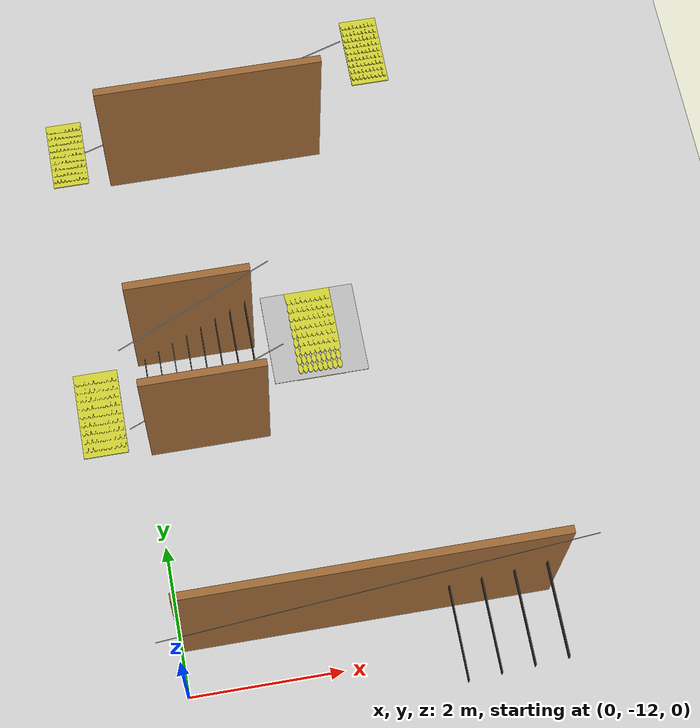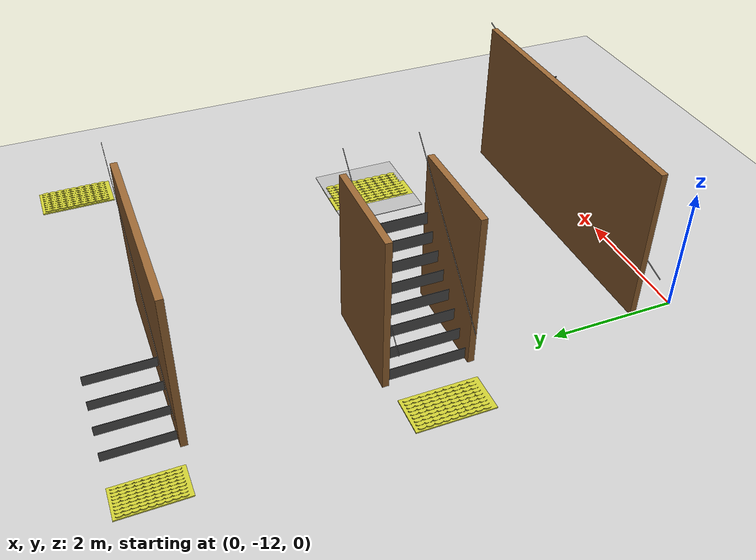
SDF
<sdf version="1.7">
 <world name="default">
  <include><uri>https://fuel.gazebosim.org/1.0/openrobotics/models/Ground%20Plane</uri></include>
  <include><uri>https://fuel.gazebosim.org/1.0/openrobotics/models/Sun</uri></include>
  <model name="tactile_strip_tactile_strip_before_2ea9241b-6679-40a4-8127-7ab0cb15bdbf_c2c6a656-e32f-45da-b116-349af31b64a5">
   <static>true</static>
   <pose>-0.55 -4.0 0.0 0 0 0</pose>
   <link name="link">
    <visual name="visual">
     <geometry>
      <mesh><uri>model://data/world-generator/assets/tactile_strip_unit.stl</uri><scale>0.5 1.0 1</scale></mesh>
     </geometry>
     <material><ambient>0.8 0.8 0.2 1</ambient><diffuse>0.8 0.8 0.2 1</diffuse></material>
    </visual>
    <collision name="collision"><geometry><box><size>0.5 1.0 0.02</size></box></geometry></collision>
   </link>
  </model>
  <model name="tactile_strip_tactile_strip_after_2ea9241b-6679-40a4-8127-7ab0cb15bdbf_17362fed-5841-430b-b9f4-dcb36aaf7513">
   <static>true</static>
   <pose>3.6999999999999993 -4.0 1.5999999999999999 0 0 0</pose>
   <link name="link">
    <visual name="visual">
     <geometry>
      <mesh><uri>model://data/world-generator/assets/tactile_strip_unit.stl</uri><scale>0.5 1.0 1</scale></mesh>
     </geometry>
     <material><ambient>0.8 0.8 0.2 1</ambient><diffuse>0.8 0.8 0.2 1</diffuse></material>
    </visual>
    <collision name="collision"><geometry><box><size>0.5 1.0 0.02</size></box></geometry></collision>
   </link>
  </model>
  <model name="handrail_handrail_2ea9241b-6679-40a4-8127-7ab0cb15bdbf_{'height': 0.95, 'extension_length': 0.3, 'offset_from_wall': 0.04}_c8f82a00-c45e-48f0-8d3c-32c5e0694542">
   <static>true</static>
   <pose>1.5 -4.46 1.75 0 -0.48995732625372834 0</pose>
   <link name="link">
    <visual name="visual">
     <geometry>
      <mesh><uri>model://data/world-generator/assets/handrail_unit.stl</uri><scale>4.0 0.25 0.95</scale></mesh>
     </geometry>
     <material><ambient>0.7 0.7 0.7 1</ambient><diffuse>0.7 0.7 0.7 1</diffuse></material>
    </visual>
    <collision name="collision">
     <geometry><cylinder><radius>0.125</radius><length>4.0</length></cylinder></geometry>
    </collision>
   </link>
  </model>
  <model name="riser_riser_9c76fb18-e7ad-4141-a3b4-28d66b0b2baf_ae0d0122-3ccc-4c39-b0f9-e13f284c8048">
   <static>true</static>
   <pose>0.15 -4.0 0.0 0 0 0</pose>
   <link name="link">
    <visual name="visual">
     <geometry>
      <mesh><uri>model://data/world-generator/assets/riser_unit.stl</uri><scale>1 1.0 0.16</scale></mesh>
     </geometry>
     <material><ambient>0.3 0.3 0.3 1</ambient><diffuse>0.3 0.3 0.3 1</diffuse></material>
    </visual>
    <collision name="collision"><geometry><box><size>0.01 1.0 0.16</size></box></geometry></collision>
   </link>
  </model>
  <model name="riser_riser_8db3b6ca-0b78-4a82-8ecd-57da0543a603_c8e3f588-3edf-4c48-967c-43171e06ea8c">
   <static>true</static>
   <pose>0.44999999999999996 -4.0 0.16 0 0 0</pose>
   <link name="link">
    <visual name="visual">
     <geometry>
      <mesh><uri>model://data/world-generator/assets/riser_unit.stl</uri><scale>1 1.0 0.16</scale></mesh>
     </geometry>
     <material><ambient>0.3 0.3 0.3 1</ambient><diffuse>0.3 0.3 0.3 1</diffuse></material>
    </visual>
    <collision name="collision"><geometry><box><size>0.01 1.0 0.16</size></box></geometry></collision>
   </link>
  </model>
  <model name="riser_riser_80268285-5291-475d-b9ea-2a03ebbe1ef6_254f730d-3a99-4d79-8cc5-aa12128035ba">
   <static>true</static>
   <pose>0.75 -4.0 0.32 0 0 0</pose>
   <link name="link">
    <visual name="visual">
     <geometry>
      <mesh><uri>model://data/world-generator/assets/riser_unit.stl</uri><scale>1 1.0 0.16</scale></mesh>
     </geometry>
     <material><ambient>0.3 0.3 0.3 1</ambient><diffuse>0.3 0.3 0.3 1</diffuse></material>
    </visual>
    <collision name="collision"><geometry><box><size>0.01 1.0 0.16</size></box></geometry></collision>
   </link>
  </model>
  <model name="riser_riser_6a5fe9ca-8d5e-4d05-9d73-330eb9fa9a97_ec2ae67e-9ca6-46fc-8f5b-947d9dd650fd">
   <static>true</static>
   <pose>1.05 -4.0 0.48 0 0 0</pose>
   <link name="link">
    <visual name="visual">
     <geometry>
      <mesh><uri>model://data/world-generator/assets/riser_unit.stl</uri><scale>1 1.0 0.16</scale></mesh>
     </geometry>
     <material><ambient>0.3 0.3 0.3 1</ambient><diffuse>0.3 0.3 0.3 1</diffuse></material>
    </visual>
    <collision name="collision"><geometry><box><size>0.01 1.0 0.16</size></box></geometry></collision>
   </link>
  </model>
  <model name="wall_stairs_invalid_1_left_ec205400-8bb0-42cc-aa7a-9a137c70528d">
   <static>true</static>
   <pose>1.5 -4.55 0.0 0 0 0.0</pose>
   <link name="link">
    <visual name="visual">
     <geometry>
      <mesh><uri>model://data/world-generator/assets/wall_unit.stl</uri><scale>3.0 1 1</scale></mesh>
     </geometry>
     <material><ambient>0.6 0.4 0.2 1</ambient><diffuse>0.6 0.4 0.2 1</diffuse></material>
    </visual>
    <collision name="collision"><geometry><box><size>3.0 0.1 1.2</size></box></geometry></collision>
   </link>
  </model>
  <model name="tactile_strip_tactile_strip_before_ba6dccbf-96f6-4c84-a471-28c2fa513998_47efde0d-9462-4f53-817f-e93aaea50bb9">
   <static>true</static>
   <pose>-0.6 -8.0 0.0 0 0 0</pose>
   <link name="link">
    <visual name="visual">
     <geometry>
      <mesh><uri>model://data/world-generator/assets/tactile_strip_unit.stl</uri><scale>0.6 1.2 1</scale></mesh>
     </geometry>
     <material><ambient>0.8 0.8 0.2 1</ambient><diffuse>0.8 0.8 0.2 1</diffuse></material>
    </visual>
    <collision name="collision"><geometry><box><size>0.6 1.2 0.02</size></box></geometry></collision>
   </link>
  </model>
  <model name="tactile_strip_tactile_strip_after_ba6dccbf-96f6-4c84-a471-28c2fa513998_1dfc1b36-a812-4d2e-a891-82aed6aae32e">
   <static>true</static>
   <pose>2.3 -8.0 1.5999999999999999 0 0 0</pose>
   <link name="link">
    <visual name="visual">
     <geometry>
      <mesh><uri>model://data/world-generator/assets/tactile_strip_unit.stl</uri><scale>0.6 1.2 1</scale></mesh>
     </geometry>
     <material><ambient>0.8 0.8 0.2 1</ambient><diffuse>0.8 0.8 0.2 1</diffuse></material>
    </visual>
    <collision name="collision"><geometry><box><size>0.6 1.2 0.02</size></box></geometry></collision>
   </link>
  </model>
  <model name="handrail_handrail_ba6dccbf-96f6-4c84-a471-28c2fa513998_{'height': 0.95, 'extension_length': 0.3, 'offset_from_wall': 0.04}_45653559-5851-44b0-84e6-108609f4c3dc">
   <static>true</static>
   <pose>0.8 -8.56 1.75 0 -0.7853981633974483 0</pose>
   <link name="link">
    <visual name="visual">
     <geometry>
      <mesh>
       <uri>model://data/world-generator/assets/handrail_unit.stl</uri>
       <scale>2.8627416997969526 0.25 0.95</scale>
      </mesh>
     </geometry>
     <material><ambient>0.7 0.7 0.7 1</ambient><diffuse>0.7 0.7 0.7 1</diffuse></material>
    </visual>
    <collision name="collision">
     <geometry><cylinder><radius>0.125</radius><length>2.8627416997969526</length></cylinder></geometry>
    </collision>
   </link>
  </model>
  <model name="handrail_handrail_ba6dccbf-96f6-4c84-a471-28c2fa513998_{'height': 0.95, 'extension_length': 0.3, 'offset_from_wall': 0.04}_097d068b-f822-4ea7-b53b-6445236d7d59">
   <static>true</static>
   <pose>0.8 -7.44 1.75 0 -0.7853981633974483 0</pose>
   <link name="link">
    <visual name="visual">
     <geometry>
      <mesh>
       <uri>model://data/world-generator/assets/handrail_unit.stl</uri>
       <scale>2.8627416997969526 0.25 0.95</scale>
      </mesh>
     </geometry>
     <material><ambient>0.7 0.7 0.7 1</ambient><diffuse>0.7 0.7 0.7 1</diffuse></material>
    </visual>
    <collision name="collision">
     <geometry><cylinder><radius>0.125</radius><length>2.8627416997969526</length></cylinder></geometry>
    </collision>
   </link>
  </model>
  <model name="riser_riser_0fd16189-d3a7-48ca-bf40-b6a18c769892_22d180ec-ee4f-4729-bbbe-681f19a4386a">
   <static>true</static>
   <pose>0.1 -8.0 0.0 0 0 0</pose>
   <link name="link">
    <visual name="visual">
     <geometry>
      <mesh><uri>model://data/world-generator/assets/riser_unit.stl</uri><scale>1 1.2 0.2</scale></mesh>
     </geometry>
     <material><ambient>0.3 0.3 0.3 1</ambient><diffuse>0.3 0.3 0.3 1</diffuse></material>
    </visual>
    <collision name="collision"><geometry><box><size>0.01 1.2 0.2</size></box></geometry></collision>
   </link>
  </model>
  <model name="riser_riser_bf9ac35c-88f7-4fa1-8b29-65452099236e_9dd44057-5b77-4751-8890-66b24c6e03c9">
   <static>true</static>
   <pose>0.30000000000000004 -8.0 0.2 0 0 0</pose>
   <link name="link">
    <visual name="visual">
     <geometry>
      <mesh><uri>model://data/world-generator/assets/riser_unit.stl</uri><scale>1 1.2 0.2</scale></mesh>
     </geometry>
     <material><ambient>0.3 0.3 0.3 1</ambient><diffuse>0.3 0.3 0.3 1</diffuse></material>
    </visual>
    <collision name="collision"><geometry><box><size>0.01 1.2 0.2</size></box></geometry></collision>
   </link>
  </model>
  <model name="riser_riser_d5effb7a-b39c-41ff-bbb1-f23a96cb4aae_77ecbbb1-9517-41bc-99f4-03c6953e9362">
   <static>true</static>
   <pose>0.5 -8.0 0.4 0 0 0</pose>
   <link name="link">
    <visual name="visual">
     <geometry>
      <mesh><uri>model://data/world-generator/assets/riser_unit.stl</uri><scale>1 1.2 0.2</scale></mesh>
     </geometry>
     <material><ambient>0.3 0.3 0.3 1</ambient><diffuse>0.3 0.3 0.3 1</diffuse></material>
    </visual>
    <collision name="collision"><geometry><box><size>0.01 1.2 0.2</size></box></geometry></collision>
   </link>
  </model>
  <model name="riser_riser_9ff6e137-7ff6-4f0f-b3c6-1c01fefe9fa7_7d449e3a-c2b6-4309-8300-a38528e85710">
   <static>true</static>
   <pose>0.7 -8.0 0.6000000000000001 0 0 0</pose>
   <link name="link">
    <visual name="visual">
     <geometry>
      <mesh><uri>model://data/world-generator/assets/riser_unit.stl</uri><scale>1 1.2 0.2</scale></mesh>
     </geometry>
     <material><ambient>0.3 0.3 0.3 1</ambient><diffuse>0.3 0.3 0.3 1</diffuse></material>
    </visual>
    <collision name="collision"><geometry><box><size>0.01 1.2 0.2</size></box></geometry></collision>
   </link>
  </model>
  <model name="riser_riser_065c5ee9-29c7-45c0-9493-bf14632a73e4_d1239d90-d3ad-4872-9af5-6d720d0c8b68">
   <static>true</static>
   <pose>0.8999999999999999 -8.0 0.8 0 0 0</pose>
   <link name="link">
    <visual name="visual">
     <geometry>
      <mesh><uri>model://data/world-generator/assets/riser_unit.stl</uri><scale>1 1.2 0.2</scale></mesh>
     </geometry>
     <material><ambient>0.3 0.3 0.3 1</ambient><diffuse>0.3 0.3 0.3 1</diffuse></material>
    </visual>
    <collision name="collision"><geometry><box><size>0.01 1.2 0.2</size></box></geometry></collision>
   </link>
  </model>
  <model name="riser_riser_a861fa4a-ed4b-483e-8a5e-e84393d3197a_c151730d-de9d-499b-8682-c98ec652c931">
   <static>true</static>
   <pose>1.0999999999999999 -8.0 1.0 0 0 0</pose>
   <link name="link">
    <visual name="visual">
     <geometry>
      <mesh><uri>model://data/world-generator/assets/riser_unit.stl</uri><scale>1 1.2 0.2</scale></mesh>
     </geometry>
     <material><ambient>0.3 0.3 0.3 1</ambient><diffuse>0.3 0.3 0.3 1</diffuse></material>
    </visual>
    <collision name="collision"><geometry><box><size>0.01 1.2 0.2</size></box></geometry></collision>
   </link>
  </model>
  <model name="riser_riser_64fc71e0-6cd0-4ff4-a4f6-bda00cd375ae_c4a4765f-4550-45dd-9047-1e260758a2fd">
   <static>true</static>
   <pose>1.2999999999999998 -8.0 1.2 0 0 0</pose>
   <link name="link">
    <visual name="visual">
     <geometry>
      <mesh><uri>model://data/world-generator/assets/riser_unit.stl</uri><scale>1 1.2 0.2</scale></mesh>
     </geometry>
     <material><ambient>0.3 0.3 0.3 1</ambient><diffuse>0.3 0.3 0.3 1</diffuse></material>
    </visual>
    <collision name="collision"><geometry><box><size>0.01 1.2 0.2</size></box></geometry></collision>
   </link>
  </model>
  <model name="riser_riser_caa694e8-261d-46e5-a3c5-c5f9cb061977_279b2124-7e60-4f15-aa99-428242dc39f7">
   <static>true</static>
   <pose>1.4999999999999998 -8.0 1.4 0 0 0</pose>
   <link name="link">
    <visual name="visual">
     <geometry>
      <mesh><uri>model://data/world-generator/assets/riser_unit.stl</uri><scale>1 1.2 0.2</scale></mesh>
     </geometry>
     <material><ambient>0.3 0.3 0.3 1</ambient><diffuse>0.3 0.3 0.3 1</diffuse></material>
    </visual>
    <collision name="collision"><geometry><box><size>0.01 1.2 0.2</size></box></geometry></collision>
   </link>
  </model>
  <model name="wall_stairs_invalid_2_left_4c9fdba4-f48a-426c-a5d5-ee370a5b975e">
   <static>true</static>
   <pose>0.8 -8.65 0.0 0 0 0.0</pose>
   <link name="link">
    <visual name="visual">
     <geometry>
      <mesh><uri>model://data/world-generator/assets/wall_unit.stl</uri><scale>1.6 1 1</scale></mesh>
     </geometry>
     <material><ambient>0.6 0.4 0.2 1</ambient><diffuse>0.6 0.4 0.2 1</diffuse></material>
    </visual>
    <collision name="collision"><geometry><box><size>1.6 0.1 1.2</size></box></geometry></collision>
   </link>
  </model>
  <model name="wall_stairs_invalid_2_right_0b380bdd-e392-4aa6-9016-85053db1b7d6">
   <static>true</static>
   <pose>0.8 -7.3500000000000005 0.0 0 0 0.0</pose>
   <link name="link">
    <visual name="visual">
     <geometry>
      <mesh><uri>model://data/world-generator/assets/wall_unit.stl</uri><scale>1.6 1 1</scale></mesh>
     </geometry>
     <material><ambient>0.6 0.4 0.2 1</ambient><diffuse>0.6 0.4 0.2 1</diffuse></material>
    </visual>
    <collision name="collision"><geometry><box><size>1.6 0.1 1.2</size></box></geometry></collision>
   </link>
  </model>
  <model name="platform_stairs_invalid_2_landing_4b21e9f2-8b20-45c7-a967-378f1c04d353">
   <static>true</static>
   <pose>2.3 -8.0 1.5999999999999999 0 0 0</pose>
   <link name="link">
    <visual name="visual">
     <geometry>
      <mesh><uri>model://data/world-generator/assets/platform_unit.stl</uri><scale>1.2 1.2 1</scale></mesh>
     </geometry>
    </visual>
    <collision name="collision"><geometry><box><size>1.2 1.2 0.01</size></box></geometry></collision>
   </link>
  </model>
  <model name="handrail_handrail_334ac3bb-0b48-41e2-9271-e1b675eb571f_{'height': 0.95, 'extension_length': 0.3, 'offset_from_wall': 0.04}_a6d3bd67-9fcc-4006-a7f7-fb74aa5581d9">
   <static>true</static>
   <pose>2.4000000000000004 -11.44 1.67 0 -0.29145679447786704 0</pose>
   <link name="link">
    <visual name="visual">
     <geometry>
      <mesh>
       <uri>model://data/world-generator/assets/handrail_unit.stl</uri>
       <scale>5.6113471242770645 0.25 0.95</scale>
      </mesh>
     </geometry>
     <material><ambient>0.7 0.7 0.7 1</ambient><diffuse>0.7 0.7 0.7 1</diffuse></material>
    </visual>
    <collision name="collision">
     <geometry><cylinder><radius>0.125</radius><length>5.6113471242770645</length></cylinder></geometry>
    </collision>
   </link>
  </model>
  <model name="riser_riser_2a98098b-df18-407b-93c1-d02a06ea57cb_b0fc3951-4760-4f4e-8718-eb29cede9834">
   <static>true</static>
   <pose>3.3999999999999995 -12.0 0.96 0 0 0</pose>
   <link name="link">
    <visual name="visual">
     <geometry>
      <mesh><uri>model://data/world-generator/assets/riser_unit.stl</uri><scale>1 1.2 0.12</scale></mesh>
     </geometry>
     <material><ambient>0.3 0.3 0.3 1</ambient><diffuse>0.3 0.3 0.3 1</diffuse></material>
    </visual>
    <collision name="collision"><geometry><box><size>0.01 1.2 0.12</size></box></geometry></collision>
   </link>
  </model>
  <model name="riser_riser_a9adfdef-dd6a-46cf-a624-64878ee6d1a2_ab0b8df3-1813-42d4-8c40-3eee7cd1fc81">
   <static>true</static>
   <pose>3.7999999999999994 -12.0 1.08 0 0 0</pose>
   <link name="link">
    <visual name="visual">
     <geometry>
      <mesh><uri>model://data/world-generator/assets/riser_unit.stl</uri><scale>1 1.2 0.12</scale></mesh>
     </geometry>
     <material><ambient>0.3 0.3 0.3 1</ambient><diffuse>0.3 0.3 0.3 1</diffuse></material>
    </visual>
    <collision name="collision"><geometry><box><size>0.01 1.2 0.12</size></box></geometry></collision>
   </link>
  </model>
  <model name="riser_riser_43ff67b2-7c53-4240-a1f6-58775a6e8945_5e93c5f4-c372-43ed-97da-61dbaf11d889">
   <static>true</static>
   <pose>4.199999999999999 -12.0 1.2000000000000002 0 0 0</pose>
   <link name="link">
    <visual name="visual">
     <geometry>
      <mesh><uri>model://data/world-generator/assets/riser_unit.stl</uri><scale>1 1.2 0.12</scale></mesh>
     </geometry>
     <material><ambient>0.3 0.3 0.3 1</ambient><diffuse>0.3 0.3 0.3 1</diffuse></material>
    </visual>
    <collision name="collision"><geometry><box><size>0.01 1.2 0.12</size></box></geometry></collision>
   </link>
  </model>
  <model name="riser_riser_7bf7846c-ea40-465e-b720-1a5e889895d7_83cba89c-5283-4ca0-89c3-d6a50e197286">
   <static>true</static>
   <pose>4.6 -12.0 1.3200000000000003 0 0 0</pose>
   <link name="link">
    <visual name="visual">
     <geometry>
      <mesh><uri>model://data/world-generator/assets/riser_unit.stl</uri><scale>1 1.2 0.12</scale></mesh>
     </geometry>
     <material><ambient>0.3 0.3 0.3 1</ambient><diffuse>0.3 0.3 0.3 1</diffuse></material>
    </visual>
    <collision name="collision"><geometry><box><size>0.01 1.2 0.12</size></box></geometry></collision>
   </link>
  </model>
  <model name="wall_stairs_invalid_3_right_451dbd30-0927-4275-8ee6-71ac35bcd494">
   <static>true</static>
   <pose>2.4000000000000004 -11.35 0.0 0 0 0.0</pose>
   <link name="link">
    <visual name="visual">
     <geometry>
      <mesh><uri>model://data/world-generator/assets/wall_unit.stl</uri><scale>4.800000000000001 1 1</scale></mesh>
     </geometry>
     <material><ambient>0.6 0.4 0.2 1</ambient><diffuse>0.6 0.4 0.2 1</diffuse></material>
    </visual>
    <collision name="collision"><geometry><box><size>4.800000000000001 0.1 1.2</size></box></geometry></collision>
   </link>
  </model>
 </world>
</sdf>
